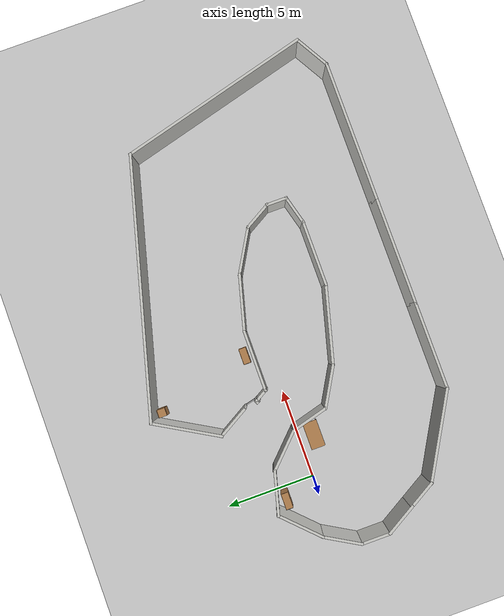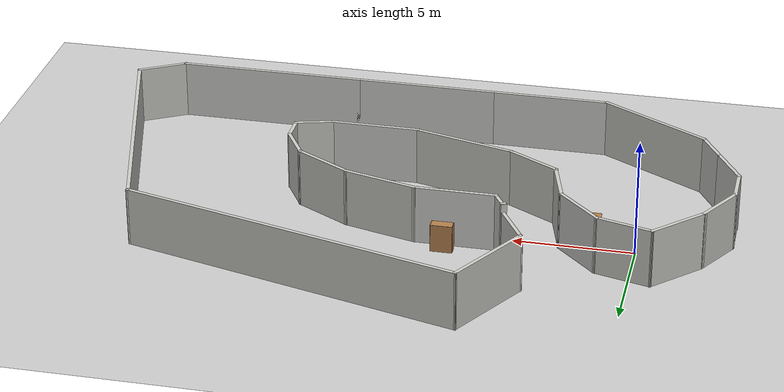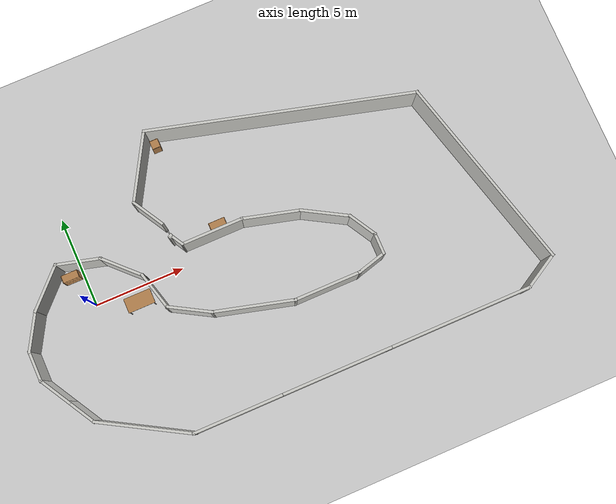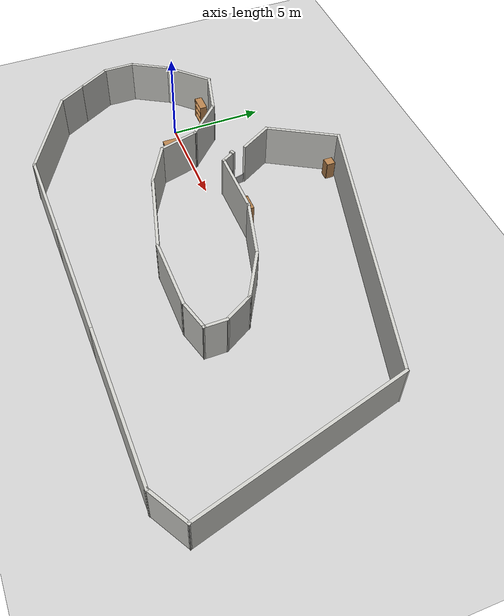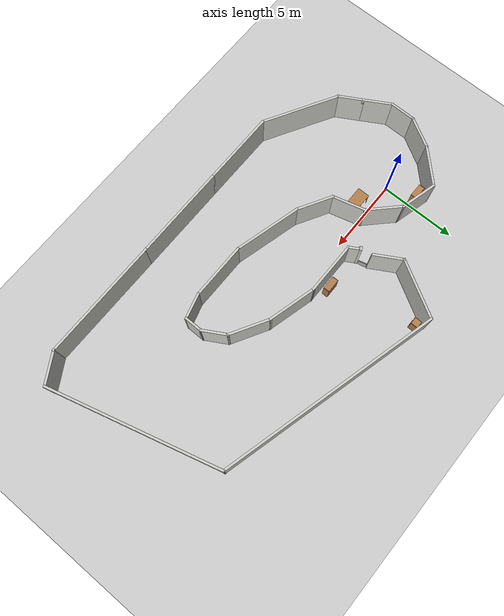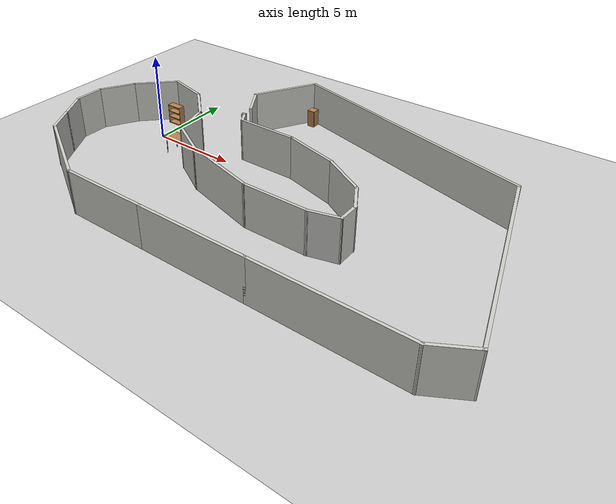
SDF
<sdf version="1.7">
 <world name="default">
  <light name="sun" type="directional">
   <pose>0 0 10 0 -0 0</pose>
   <diffuse>0.8 0.8 0.8 1</diffuse>
   <specular>0.2 0.2 0.2 1</specular>
   <attenuation>
    <range>1000</range>
    <constant>0.9</constant>
    <linear>0.01</linear>
    <quadratic>0.001</quadratic>
   </attenuation>
   <direction>-0.5 0.1 -0.9</direction>
   <spot><inner_angle>0</inner_angle><outer_angle>0</outer_angle><falloff>0</falloff></spot>
  </light>
  <model name="ground_plane">
   <static>1</static>
   <link name="link">
    <collision name="collision">
     <geometry><plane><normal>0 0 1</normal><size>100 100</size></plane></geometry>
     <surface>
      <contact><collide_bitmask>65535</collide_bitmask></contact>
      <friction><ode><mu>100</mu><mu2>50</mu2></ode></friction>
     </surface>
    </collision>
    <visual name="visual">
     <cast_shadows>0</cast_shadows>
     <geometry><plane><normal>0 0 1</normal><size>100 100</size></plane></geometry>
     <material>
      <script><uri>file://media/materials/scripts/gazebo.material</uri><name>Gazebo/Grey</name></script>
     </material>
    </visual>
   </link>
  </model>
  <physics type="ode">
   <real_time_update_rate>1000</real_time_update_rate>
   <max_step_size>0.001</max_step_size>
   <real_time_factor>1</real_time_factor>
   <ode>
    <solver>
     <type>quick</type>
     <iters>150</iters>
     <precon_iters>0</precon_iters>
     <sor>1.4</sor>
     <use_dynamic_moi_rescaling>1</use_dynamic_moi_rescaling>
    </solver>
    <constraints>
     <cfm>1e-05</cfm>
     <erp>0.2</erp>
     <contact_max_correcting_vel>2000</contact_max_correcting_vel>
     <contact_surface_layer>0.01</contact_surface_layer>
    </constraints>
   </ode>
  </physics>
  <scene><ambient>0.4 0.4 0.4 1</ambient><background>0.7 0.7 0.7 1</background><shadows>0</shadows></scene>
  <gravity>0 0 -9.8</gravity>
  <magnetic_field>6e-06 2.3e-05 -4.2e-05</magnetic_field>
  <atmosphere type="adiabatic"/>
  <spherical_coordinates>
   <surface_model>EARTH_WGS84</surface_model>
   <latitude_deg>0</latitude_deg>
   <longitude_deg>0</longitude_deg>
   <elevation>0</elevation>
   <heading_deg>0</heading_deg>
  </spherical_coordinates>
  <model name="c-shaped-room-2">
   <pose>9.60203 -0.59248 0 0 -0 0</pose>
   <link name="Wall_0">
    <collision name="Wall_0_Collision">
     <geometry><box><size>0.75 0.15 2.5</size></box></geometry>
     <pose>0 0 1.25 0 -0 0</pose>
    </collision>
    <visual name="Wall_0_Visual">
     <pose>0 0 1.25 0 -0 0</pose>
     <geometry><box><size>0.75 0.15 2.5</size></box></geometry>
     <material>
      <script><uri>file://media/materials/scripts/gazebo.material</uri><name>Gazebo/CeilingTiled</name></script>
      <ambient>1 1 1 1</ambient>
     </material>
     <meta><layer>0</layer></meta>
    </visual>
    <pose>-4.18018 1.68232 0 0 -0 -1.0472</pose>
   </link>
   <link name="Wall_1">
    <collision name="Wall_1_Collision">
     <geometry><box><size>3.5 0.15 2.5</size></box></geometry>
     <pose>0 0 1.25 0 -0 0</pose>
    </collision>
    <visual name="Wall_1_Visual">
     <pose>0 0 1.25 0 -0 0</pose>
     <geometry><box><size>3.5 0.15 2.5</size></box></geometry>
     <material>
      <script><uri>file://media/materials/scripts/gazebo.material</uri><name>Gazebo/CeilingTiled</name></script>
      <ambient>1 1 1 1</ambient>
     </material>
     <meta><layer>0</layer></meta>
    </visual>
    <pose>-2.35519 1.42251 0 0 -0 0</pose>
   </link>
   <link name="Wall_10">
    <collision name="Wall_10_Collision">
     <geometry><box><size>2.25 0.15 2.5</size></box></geometry>
     <pose>0 0 1.25 0 -0 0</pose>
    </collision>
    <visual name="Wall_10_Visual">
     <pose>0 0 1.25 0 -0 0</pose>
     <geometry><box><size>2.25 0.15 2.5</size></box></geometry>
     <material>
      <script><uri>file://media/materials/scripts/gazebo.material</uri><name>Gazebo/CeilingTiled</name></script>
      <ambient>1 1 1 1</ambient>
     </material>
     <meta><layer>0</layer></meta>
    </visual>
    <pose>-6.28833 -0.264497 0 0 -0 1.8326</pose>
   </link>
   <link name="Wall_11">
    <collision name="Wall_11_Collision">
     <geometry><box><size>2.5 0.15 2.5</size></box></geometry>
     <pose>0 0 1.25 0 -0 0</pose>
    </collision>
    <visual name="Wall_11_Visual">
     <pose>0 0 1.25 0 -0 0</pose>
     <geometry><box><size>2.5 0.15 2.5</size></box></geometry>
     <material>
      <script><uri>file://media/materials/scripts/gazebo.material</uri><name>Gazebo/CeilingTiled</name></script>
      <ambient>1 1 1 1</ambient>
     </material>
     <meta><layer>0</layer></meta>
    </visual>
    <pose>-7.39094 1.58058 0 0 -0 2.35619</pose>
   </link>
   <link name="Wall_12">
    <collision name="Wall_12_Collision">
     <geometry><box><size>2.5 0.15 2.5</size></box></geometry>
     <pose>0 0 1.25 0 -0 0</pose>
    </collision>
    <visual name="Wall_12_Visual">
     <pose>0 0 1.25 0 -0 0</pose>
     <geometry><box><size>2.5 0.15 2.5</size></box></geometry>
     <material>
      <script><uri>file://media/materials/scripts/gazebo.material</uri><name>Gazebo/CeilingTiled</name></script>
      <ambient>1 1 1 1</ambient>
     </material>
     <meta><layer>0</layer></meta>
    </visual>
    <pose>-9.35675 2.71554 0 0 -0 2.87979</pose>
   </link>
   <link name="Wall_13">
    <collision name="Wall_13_Collision">
     <geometry><box><size>2.75 0.15 2.5</size></box></geometry>
     <pose>0 0 1.25 0 -0 0</pose>
    </collision>
    <visual name="Wall_13_Visual">
     <pose>0 0 1.25 0 -0 0</pose>
     <geometry><box><size>2.75 0.15 2.5</size></box></geometry>
     <material>
      <script><uri>file://media/materials/scripts/gazebo.material</uri><name>Gazebo/CeilingTiled</name></script>
      <ambient>1 1 1 1</ambient>
     </material>
     <meta><layer>0</layer></meta>
    </visual>
    <pose>-11.411 2.10041 0 0 -0 -2.35619</pose>
   </link>
   <link name="Wall_14">
    <collision name="Wall_14_Collision">
     <geometry><box><size>2.25 0.15 2.5</size></box></geometry>
     <pose>0 0 1.25 0 -0 0</pose>
    </collision>
    <visual name="Wall_14_Visual">
     <pose>0 0 1.25 0 -0 0</pose>
     <geometry><box><size>2.25 0.15 2.5</size></box></geometry>
     <material>
      <script><uri>file://media/materials/scripts/gazebo.material</uri><name>Gazebo/CeilingTiled</name></script>
      <ambient>1 1 1 1</ambient>
     </material>
     <meta><layer>0</layer></meta>
    </visual>
    <pose>-12.8552 0.271847 0 0 -0 -2.0944</pose>
   </link>
   <link name="Wall_15">
    <collision name="Wall_15_Collision">
     <geometry><box><size>1.75 0.15 2.5</size></box></geometry>
     <pose>0 0 1.25 0 -0 0</pose>
    </collision>
    <visual name="Wall_15_Visual">
     <pose>0 0 1.25 0 -0 0</pose>
     <geometry><box><size>1.75 0.15 2.5</size></box></geometry>
     <material>
      <script><uri>file://media/materials/scripts/gazebo.material</uri><name>Gazebo/CeilingTiled</name></script>
      <ambient>1 1 1 1</ambient>
     </material>
     <meta><layer>0</layer></meta>
    </visual>
    <pose>-13.3802 -1.43748 0 0 -0 -1.5708</pose>
   </link>
   <link name="Wall_16">
    <collision name="Wall_16_Collision">
     <geometry><box><size>2 0.15 2.5</size></box></geometry>
     <pose>0 0 1.25 0 -0 0</pose>
    </collision>
    <visual name="Wall_16_Visual">
     <pose>0 0 1.25 0 -0 0</pose>
     <geometry><box><size>2 0.15 2.5</size></box></geometry>
     <material>
      <script><uri>file://media/materials/scripts/gazebo.material</uri><name>Gazebo/CeilingTiled</name></script>
      <ambient>1 1 1 1</ambient>
     </material>
     <meta><layer>0</layer></meta>
    </visual>
    <pose>-12.9177 -3.03855 0 0 -0 -1.0472</pose>
   </link>
   <link name="Wall_17">
    <collision name="Wall_17_Collision">
     <geometry><box><size>1.75 0.15 2.5</size></box></geometry>
     <pose>0 0 1.25 0 -0 0</pose>
    </collision>
    <visual name="Wall_17_Visual">
     <pose>0 0 1.25 0 -0 0</pose>
     <geometry><box><size>1.75 0.15 2.5</size></box></geometry>
     <material>
      <script><uri>file://media/materials/scripts/gazebo.material</uri><name>Gazebo/CeilingTiled</name></script>
      <ambient>1 1 1 1</ambient>
     </material>
     <meta><layer>0</layer></meta>
    </visual>
    <pose>-12.0552 -4.53245 0 0 -0 -1.0472</pose>
   </link>
   <link name="Wall_18">
    <collision name="Wall_18_Collision">
     <geometry><box><size>5.25 0.15 2.5</size></box></geometry>
     <pose>0 0 1.25 0 -0 0</pose>
    </collision>
    <visual name="Wall_18_Visual">
     <pose>0 0 1.25 0 -0 0</pose>
     <geometry><box><size>5.25 0.15 2.5</size></box></geometry>
     <material>
      <script><uri>file://media/materials/scripts/gazebo.material</uri><name>Gazebo/CeilingTiled</name></script>
      <ambient>1 1 1 1</ambient>
     </material>
     <meta><layer>0</layer></meta>
    </visual>
    <pose>-9.44683 -6.50027 0 0 -0 -0.523599</pose>
   </link>
   <link name="Wall_19">
    <collision name="Wall_19_Collision">
     <geometry><box><size>5 0.15 2.5</size></box></geometry>
     <pose>0 0 1.25 0 -0 0</pose>
    </collision>
    <visual name="Wall_19_Visual">
     <pose>0 0 1.25 0 -0 0</pose>
     <geometry><box><size>5 0.15 2.5</size></box></geometry>
     <material>
      <script><uri>file://media/materials/scripts/gazebo.material</uri><name>Gazebo/CeilingTiled</name></script>
      <ambient>1 1 1 1</ambient>
     </material>
     <meta><layer>0</layer></meta>
    </visual>
    <pose>-4.81346 -7.77527 0 0 -0 0</pose>
   </link>
   <link name="Wall_2">
    <collision name="Wall_2_Collision">
     <geometry><box><size>3.25 0.15 2.5</size></box></geometry>
     <pose>0 0 1.25 0 -0 0</pose>
    </collision>
    <visual name="Wall_2_Visual">
     <pose>0 0 1.25 0 -0 0</pose>
     <geometry><box><size>3.25 0.15 2.5</size></box></geometry>
     <material>
      <script><uri>file://media/materials/scripts/gazebo.material</uri><name>Gazebo/CeilingTiled</name></script>
      <ambient>1 1 1 1</ambient>
     </material>
     <meta><layer>0</layer></meta>
    </visual>
    <pose>0.817 1.02134 0 0 -0 -0.261799</pose>
   </link>
   <link name="Wall_20">
    <collision name="Wall_20_Collision">
     <geometry><box><size>6.25 0.15 2.5</size></box></geometry>
     <pose>0 0 1.25 0 -0 0</pose>
    </collision>
    <visual name="Wall_20_Visual">
     <pose>0 0 1.25 0 -0 0</pose>
     <geometry><box><size>6.25 0.15 2.5</size></box></geometry>
     <material>
      <script><uri>file://media/materials/scripts/gazebo.material</uri><name>Gazebo/CeilingTiled</name></script>
      <ambient>1 1 1 1</ambient>
     </material>
     <meta><layer>0</layer></meta>
    </visual>
    <pose>0.661538 -7.77527 0 0 -0 0</pose>
   </link>
   <link name="Wall_21">
    <collision name="Wall_21_Collision">
     <geometry><box><size>8 0.15 2.5</size></box></geometry>
     <pose>0 0 1.25 0 -0 0</pose>
    </collision>
    <visual name="Wall_21_Visual">
     <pose>0 0 1.25 0 -0 0</pose>
     <geometry><box><size>8 0.15 2.5</size></box></geometry>
     <material>
      <script><uri>file://media/materials/scripts/gazebo.material</uri><name>Gazebo/CeilingTiled</name></script>
      <ambient>1 1 1 1</ambient>
     </material>
     <meta><layer>0</layer></meta>
    </visual>
    <pose>7.63654 -7.77527 0 0 -0 0</pose>
   </link>
   <link name="Wall_22">
    <collision name="Wall_22_Collision">
     <geometry><box><size>2.25 0.15 2.5</size></box></geometry>
     <pose>0 0 1.25 0 -0 0</pose>
    </collision>
    <visual name="Wall_22_Visual">
     <pose>0 0 1.25 0 -0 0</pose>
     <geometry><box><size>2.25 0.15 2.5</size></box></geometry>
     <material>
      <script><uri>file://media/materials/scripts/gazebo.material</uri><name>Gazebo/CeilingTiled</name></script>
      <ambient>1 1 1 1</ambient>
     </material>
     <meta><layer>0</layer></meta>
    </visual>
    <pose>12.4709 -7.25027 0 0 -0 0.523599</pose>
   </link>
   <link name="Wall_23">
    <collision name="Wall_23_Collision">
     <geometry><box><size>11.25 0.15 2.5</size></box></geometry>
     <pose>0 0 1.25 0 -0 0</pose>
    </collision>
    <visual name="Wall_23_Visual">
     <pose>0 0 1.25 0 -0 0</pose>
     <geometry><box><size>11.25 0.15 2.5</size></box></geometry>
     <material>
      <script><uri>file://media/materials/scripts/gazebo.material</uri><name>Gazebo/CeilingTiled</name></script>
      <ambient>1 1 1 1</ambient>
     </material>
     <meta><layer>0</layer></meta>
    </visual>
    <pose>11.9437 -1.36438 0 0 -0 1.8326</pose>
   </link>
   <link name="Wall_24">
    <collision name="Wall_24_Collision">
     <geometry><box><size>14.75 0.15 2.5</size></box></geometry>
     <pose>0 0 1.25 0 -0 0</pose>
    </collision>
    <visual name="Wall_24_Visual">
     <pose>0 0 1.25 0 -0 0</pose>
     <geometry><box><size>14.75 0.15 2.5</size></box></geometry>
     <material>
      <script><uri>file://media/materials/scripts/gazebo.material</uri><name>Gazebo/CeilingTiled</name></script>
      <ambient>1 1 1 1</ambient>
     </material>
     <meta><layer>0</layer></meta>
    </visual>
    <pose>3.45604 5.88589 0 0 -0 2.87979</pose>
   </link>
   <link name="Wall_25">
    <collision name="Wall_25_Collision">
     <geometry><box><size>4 0.15 2.5</size></box></geometry>
     <pose>0 0 1.25 0 -0 0</pose>
    </collision>
    <visual name="Wall_25_Visual">
     <pose>0 0 1.25 0 -0 0</pose>
     <geometry><box><size>4 0.15 2.5</size></box></geometry>
     <material>
      <script><uri>file://media/materials/scripts/gazebo.material</uri><name>Gazebo/CeilingTiled</name></script>
      <ambient>1 1 1 1</ambient>
     </material>
     <meta><layer>0</layer></meta>
    </visual>
    <pose>-4.55772 6.10817 0 0 -0 -2.0944</pose>
   </link>
   <link name="Wall_26">
    <collision name="Wall_26_Collision">
     <geometry><box><size>2 0.15 2.5</size></box></geometry>
     <pose>0 0 1.25 0 -0 0</pose>
    </collision>
    <visual name="Wall_26_Visual">
     <pose>0 0 1.25 0 -0 0</pose>
     <geometry><box><size>2 0.15 2.5</size></box></geometry>
     <material>
      <script><uri>file://media/materials/scripts/gazebo.material</uri><name>Gazebo/CeilingTiled</name></script>
      <ambient>1 1 1 1</ambient>
     </material>
     <meta><layer>0</layer></meta>
    </visual>
    <pose>-5.05772 3.64 0 0 -0 -1.0472</pose>
   </link>
   <link name="Wall_3">
    <collision name="Wall_3_Collision">
     <geometry><box><size>2.75 0.15 2.5</size></box></geometry>
     <pose>0 0 1.25 0 -0 0</pose>
    </collision>
    <visual name="Wall_3_Visual">
     <pose>0 0 1.25 0 -0 0</pose>
     <geometry><box><size>2.75 0.15 2.5</size></box></geometry>
     <material>
      <script><uri>file://media/materials/scripts/gazebo.material</uri><name>Gazebo/CeilingTiled</name></script>
      <ambient>1 1 1 1</ambient>
     </material>
     <meta><layer>0</layer></meta>
    </visual>
    <pose>3.44002 -0.029831 0 0 -0 -0.523599</pose>
   </link>
   <link name="Wall_4">
    <collision name="Wall_4_Collision">
     <geometry><box><size>1.75 0.15 2.5</size></box></geometry>
     <pose>0 0 1.25 0 -0 0</pose>
    </collision>
    <visual name="Wall_4_Visual">
     <pose>0 0 1.25 0 -0 0</pose>
     <geometry><box><size>1.75 0.15 2.5</size></box></geometry>
     <material>
      <script><uri>file://media/materials/scripts/gazebo.material</uri><name>Gazebo/CeilingTiled</name></script>
      <ambient>1 1 1 1</ambient>
     </material>
     <meta><layer>0</layer></meta>
    </visual>
    <pose>4.96585 -1.37265 0 0 -0 -1.0472</pose>
   </link>
   <link name="Wall_5">
    <collision name="Wall_5_Collision">
     <geometry><box><size>1.25 0.15 2.5</size></box></geometry>
     <pose>0 0 1.25 0 -0 0</pose>
    </collision>
    <visual name="Wall_5_Visual">
     <pose>0 0 1.25 0 -0 0</pose>
     <geometry><box><size>1.25 0.15 2.5</size></box></geometry>
     <material>
      <script><uri>file://media/materials/scripts/gazebo.material</uri><name>Gazebo/CeilingTiled</name></script>
      <ambient>1 1 1 1</ambient>
     </material>
     <meta><layer>0</layer></meta>
    </visual>
    <pose>5.36585 -2.61547 0 0 -0 -1.5708</pose>
   </link>
   <link name="Wall_6">
    <collision name="Wall_6_Collision">
     <geometry><box><size>1.75 0.15 2.5</size></box></geometry>
     <pose>0 0 1.25 0 -0 0</pose>
    </collision>
    <visual name="Wall_6_Visual">
     <pose>0 0 1.25 0 -0 0</pose>
     <geometry><box><size>1.75 0.15 2.5</size></box></geometry>
     <material>
      <script><uri>file://media/materials/scripts/gazebo.material</uri><name>Gazebo/CeilingTiled</name></script>
      <ambient>1 1 1 1</ambient>
     </material>
     <meta><layer>0</layer></meta>
    </visual>
    <pose>4.59311 -3.37253 0 0 -0 -2.87979</pose>
   </link>
   <link name="Wall_7">
    <collision name="Wall_7_Collision">
     <geometry><box><size>3.75 0.15 2.5</size></box></geometry>
     <pose>0 0 1.25 0 -0 0</pose>
    </collision>
    <visual name="Wall_7_Visual">
     <pose>0 0 1.25 0 -0 0</pose>
     <geometry><box><size>3.75 0.15 2.5</size></box></geometry>
     <material>
      <script><uri>file://media/materials/scripts/gazebo.material</uri><name>Gazebo/CeilingTiled</name></script>
      <ambient>1 1 1 1</ambient>
     </material>
     <meta><layer>0</layer></meta>
    </visual>
    <pose>2.02037 -3.57958 0 0 -0 3.14159</pose>
   </link>
   <link name="Wall_8">
    <collision name="Wall_8_Collision">
     <geometry><box><size>4.5 0.15 2.5</size></box></geometry>
     <pose>0 0 1.25 0 -0 0</pose>
    </collision>
    <visual name="Wall_8_Visual">
     <pose>0 0 1.25 0 -0 0</pose>
     <geometry><box><size>4.5 0.15 2.5</size></box></geometry>
     <material>
      <script><uri>file://media/materials/scripts/gazebo.material</uri><name>Gazebo/CeilingTiled</name></script>
      <ambient>1 1 1 1</ambient>
     </material>
     <meta><layer>0</layer></meta>
    </visual>
    <pose>-1.88052 -3.01665 0 0 -0 2.87979</pose>
   </link>
   <link name="Wall_9">
    <collision name="Wall_9_Collision">
     <geometry><box><size>2.5 0.15 2.5</size></box></geometry>
     <pose>0 0 1.25 0 -0 0</pose>
    </collision>
    <visual name="Wall_9_Visual">
     <pose>0 0 1.25 0 -0 0</pose>
     <geometry><box><size>2.5 0.15 2.5</size></box></geometry>
     <material>
      <script><uri>file://media/materials/scripts/gazebo.material</uri><name>Gazebo/CeilingTiled</name></script>
      <ambient>1 1 1 1</ambient>
     </material>
     <meta><layer>0</layer></meta>
    </visual>
    <pose>-4.99899 -1.86622 0 0 -0 2.61799</pose>
   </link>
   <static>1</static>
  </model>
  <model name="table">
   <static>1</static>
   <link name="link">
    <collision name="surface">
     <pose>0 0 1 0 -0 0</pose>
     <geometry><box><size>1.5 0.8 0.03</size></box></geometry>
     <surface><friction><ode><mu>0.6</mu><mu2>0.6</mu2></ode></friction></surface>
    </collision>
    <visual name="visual1">
     <pose>0 0 1 0 -0 0</pose>
     <geometry><box><size>1.5 0.8 0.03</size></box></geometry>
     <material>
      <script><uri>file://media/materials/scripts/gazebo.material</uri><name>Gazebo/Wood</name></script>
     </material>
    </visual>
    <collision name="front_left_leg">
     <pose>0.68 0.38 0.5 0 -0 0</pose>
     <geometry><cylinder><radius>0.02</radius><length>1</length></cylinder></geometry>
    </collision>
    <visual name="front_left_leg">
     <pose>0.68 0.38 0.5 0 -0 0</pose>
     <geometry><cylinder><radius>0.02</radius><length>1</length></cylinder></geometry>
     <material>
      <script><uri>file://media/materials/scripts/gazebo.material</uri><name>Gazebo/Grey</name></script>
     </material>
    </visual>
    <collision name="front_right_leg">
     <pose>0.68 -0.38 0.5 0 -0 0</pose>
     <geometry><cylinder><radius>0.02</radius><length>1</length></cylinder></geometry>
    </collision>
    <visual name="front_right_leg">
     <pose>0.68 -0.38 0.5 0 -0 0</pose>
     <geometry><cylinder><radius>0.02</radius><length>1</length></cylinder></geometry>
     <material>
      <script><uri>file://media/materials/scripts/gazebo.material</uri><name>Gazebo/Grey</name></script>
     </material>
    </visual>
    <collision name="back_right_leg">
     <pose>-0.68 -0.38 0.5 0 -0 0</pose>
     <geometry><cylinder><radius>0.02</radius><length>1</length></cylinder></geometry>
    </collision>
    <visual name="back_right_leg">
     <pose>-0.68 -0.38 0.5 0 -0 0</pose>
     <geometry><cylinder><radius>0.02</radius><length>1</length></cylinder></geometry>
     <material>
      <script><uri>file://media/materials/scripts/gazebo.material</uri><name>Gazebo/Grey</name></script>
     </material>
    </visual>
    <collision name="back_left_leg">
     <pose>-0.68 0.38 0.5 0 -0 0</pose>
     <geometry><cylinder><radius>0.02</radius><length>1</length></cylinder></geometry>
    </collision>
    <visual name="back_left_leg">
     <pose>-0.68 0.38 0.5 0 -0 0</pose>
     <geometry><cylinder><radius>0.02</radius><length>1</length></cylinder></geometry>
     <material>
      <script><uri>file://media/materials/scripts/gazebo.material</uri><name>Gazebo/Grey</name></script>
     </material>
    </visual>
   </link>
   <pose>2.2775 -0.823544 0 0 -0 0</pose>
  </model>
  <model name="bookshelf">
   <static>1</static>
   <link name="link">
    <inertial><mass>1</mass></inertial>
    <collision name="back">
     <pose>0 0.005 0.6 0 -0 0</pose>
     <geometry><box><size>0.9 0.01 1.2</size></box></geometry>
    </collision>
    <visual name="visual1">
     <pose>0 0.005 0.6 0 -0 0</pose>
     <geometry><box><size>0.9 0.01 1.2</size></box></geometry>
     <material>
      <script><uri>file://media/materials/scripts/gazebo.material</uri><name>Gazebo/Wood</name></script>
     </material>
    </visual>
    <collision name="left_side">
     <pose>0.45 -0.195 0.6 0 -0 0</pose>
     <geometry><box><size>0.02 0.4 1.2</size></box></geometry>
    </collision>
    <visual name="visual2">
     <pose>0.45 -0.195 0.6 0 -0 0</pose>
     <geometry><box><size>0.02 0.4 1.2</size></box></geometry>
     <material>
      <script><uri>file://media/materials/scripts/gazebo.material</uri><name>Gazebo/Wood</name></script>
     </material>
    </visual>
    <collision name="right_side">
     <pose>-0.45 -0.195 0.6 0 -0 0</pose>
     <geometry><box><size>0.02 0.4 1.2</size></box></geometry>
    </collision>
    <visual name="visual3">
     <pose>-0.45 -0.195 0.6 0 -0 0</pose>
     <geometry><box><size>0.02 0.4 1.2</size></box></geometry>
     <material>
      <script><uri>file://media/materials/scripts/gazebo.material</uri><name>Gazebo/Wood</name></script>
     </material>
    </visual>
    <collision name="bottom">
     <pose>0 -0.195 0.03 0 -0 0</pose>
     <geometry><box><size>0.88 0.4 0.06</size></box></geometry>
    </collision>
    <visual name="visual4">
     <pose>0 -0.195 0.03 0 -0 0</pose>
     <geometry><box><size>0.88 0.4 0.06</size></box></geometry>
     <material>
      <script><uri>file://media/materials/scripts/gazebo.material</uri><name>Gazebo/Wood</name></script>
     </material>
    </visual>
    <collision name="top">
     <pose>0 -0.195 1.19 0 -0 0</pose>
     <geometry><box><size>0.88 0.4 0.02</size></box></geometry>
    </collision>
    <visual name="visual5">
     <pose>0 -0.195 1.19 0 -0 0</pose>
     <geometry><box><size>0.88 0.4 0.02</size></box></geometry>
     <material>
      <script><uri>file://media/materials/scripts/gazebo.material</uri><name>Gazebo/Wood</name></script>
     </material>
    </visual>
    <collision name="low_shelf">
     <pose>0 -0.195 0.43 0 -0 0</pose>
     <geometry><box><size>0.88 0.4 0.02</size></box></geometry>
    </collision>
    <visual name="visual6">
     <pose>0 -0.195 0.43 0 -0 0</pose>
     <geometry><box><size>0.88 0.4 0.02</size></box></geometry>
     <material>
      <script><uri>file://media/materials/scripts/gazebo.material</uri><name>Gazebo/Wood</name></script>
     </material>
    </visual>
    <collision name="high_shelf">
     <pose>0 -0.195 0.8 0 -0 0</pose>
     <geometry><box><size>0.88 0.4 0.02</size></box></geometry>
    </collision>
    <visual name="visual7">
     <pose>0 -0.195 0.8 0 -0 0</pose>
     <geometry><box><size>0.88 0.4 0.02</size></box></geometry>
     <material>
      <script><uri>file://media/materials/scripts/gazebo.material</uri><name>Gazebo/Wood</name></script>
     </material>
    </visual>
   </link>
   <pose>-0.580839 1.99278 0 0 -0 0</pose>
  </model>
  <model name="door-model">
   <link name="door">
    <inertial>
     <mass>20</mass>
     <inertia>
      <ixx>4.53808</ixx>
      <ixy>0</ixy>
      <ixz>0</ixz>
      <iyy>4.54003</iyy>
      <iyz>0</iyz>
      <izz>0.0512722</izz>
     </inertia>
    </inertial>
    <gravity>0</gravity>
    <visual name="visual">
     <geometry><mesh><uri>model://door-model/./Door.dae</uri><scale>0.001 0.001 0.001</scale></mesh></geometry>
    </visual>
    <collision name="collision">
     <geometry><mesh><uri>model://door-model/./Door.dae</uri><scale>0.001 0.001 0.001</scale></mesh></geometry>
     <surface>
      <friction>
       <ode><mu>1</mu><mu2>1</mu2><fdir1>0 0 0</fdir1><slip1>0</slip1><slip2>0</slip2></ode>
       <torsional>
        <coefficient>1</coefficient>
        <patch_radius>0</patch_radius>
        <surface_radius>0</surface_radius>
        <use_patch_radius>1</use_patch_radius>
        <ode><slip>0</slip></ode>
       </torsional>
      </friction>
      <bounce><restitution_coefficient>0</restitution_coefficient><threshold>1e+06</threshold></bounce>
      <contact>
       <collide_without_contact>0</collide_without_contact>
       <collide_without_contact_bitmask>1</collide_without_contact_bitmask>
       <collide_bitmask>1</collide_bitmask>
       <ode>
        <soft_cfm>0</soft_cfm>
        <soft_erp>0.2</soft_erp>
        <kp>1e+13</kp>
        <kd>1</kd>
        <max_vel>0.01</max_vel>
        <min_depth>0</min_depth>
       </ode>
       <bullet>
        <split_impulse>1</split_impulse>
        <split_impulse_penetration_threshold>-0.01</split_impulse_penetration_threshold>
        <soft_cfm>0</soft_cfm>
        <soft_erp>0.2</soft_erp>
        <kp>1e+13</kp>
        <kd>1</kd>
       </bullet>
      </contact>
     </surface>
    </collision>
   </link>
   <link name="pole">
    <inertial>
     <mass>100</mass>
     <inertia>
      <ixx>0.001</ixx>
      <ixy>0.001</ixy>
      <ixz>0.001</ixz>
      <iyy>0.001</iyy>
      <iyz>0.001</iyz>
      <izz>0.001</izz>
     </inertia>
    </inertial>
    <pose>-0.02632 0 0.308096 0 -0 0</pose>
    <gravity>0</gravity>
    <kinematic>1</kinematic>
    <visual name="visual">
     <geometry><box><size>0.048276 0.0462 0.625074</size></box></geometry>
     <material>
      <lighting>1</lighting>
      <script><uri>file://media/materials/scripts/gazebo.material</uri><name>Gazebo/White</name></script>
      <ambient>1 1 1 1</ambient>
     </material>
    </visual>
    <collision name="collision">
     <geometry><box><size>0.048 0.046201 0.625074</size></box></geometry>
     <surface>
      <friction>
       <ode><mu>1</mu><mu2>1</mu2><fdir1>0 0 0</fdir1><slip1>0</slip1><slip2>0</slip2></ode>
       <torsional>
        <coefficient>1</coefficient>
        <patch_radius>0</patch_radius>
        <surface_radius>0</surface_radius>
        <use_patch_radius>1</use_patch_radius>
        <ode><slip>0</slip></ode>
       </torsional>
      </friction>
      <bounce><restitution_coefficient>0</restitution_coefficient><threshold>1e+06</threshold></bounce>
      <contact>
       <collide_without_contact>0</collide_without_contact>
       <collide_without_contact_bitmask>1</collide_without_contact_bitmask>
       <collide_bitmask>1</collide_bitmask>
       <ode>
        <soft_cfm>0</soft_cfm>
        <soft_erp>0.2</soft_erp>
        <kp>1e+13</kp>
        <kd>1</kd>
        <max_vel>0.01</max_vel>
        <min_depth>0</min_depth>
       </ode>
       <bullet>
        <split_impulse>1</split_impulse>
        <split_impulse_penetration_threshold>-0.01</split_impulse_penetration_threshold>
        <soft_cfm>0</soft_cfm>
        <soft_erp>0.2</soft_erp>
        <kp>1e+13</kp>
        <kd>1</kd>
       </bullet>
      </contact>
     </surface>
    </collision>
   </link>
   <joint name="hinge" type="revolute">
    <parent>pole</parent>
    <child>door</child>
    <pose>0 0 0.3 0 -0 0</pose>
    <axis>
     <xyz>0 0 1</xyz>
     <limit><lower>-1.74533</lower><upper>1.74533</upper><effort>3900</effort><velocity>0.62</velocity></limit>
     <dynamics>
      <spring_reference>0</spring_reference>
      <spring_stiffness>0</spring_stiffness>
      <damping>0.1</damping>
      <friction>0.1</friction>
     </dynamics>
    </axis>
    <physics>
     <ode><limit><cfm>0</cfm><erp>0.2</erp></limit><suspension><cfm>0</cfm><erp>0.2</erp></suspension></ode>
    </physics>
   </joint>
   <static>0</static>
   <pose>5.06477 2.12591 0 0 0 -1.34068</pose>
  </model>
  <model name="gap-filler-tile">
   <pose>5.07767 4.81142 0 0 -0 0.450926</pose>
   <link name="Wall_4">
    <collision name="Wall_4_Collision">
     <geometry><box><size>0.25 0.15 2.5</size></box></geometry>
     <pose>0 0 1.25 0 -0 0</pose>
    </collision>
    <visual name="Wall_4_Visual">
     <pose>0 0 1.25 0 -0 0</pose>
     <geometry><box><size>0.25 0.15 2.5</size></box></geometry>
     <material>
      <script><uri>file://media/materials/scripts/gazebo.material</uri><name>Gazebo/CeilingTiled</name></script>
      <ambient>1 1 1 1</ambient>
     </material>
     <meta><layer>0</layer></meta>
    </visual>
    <pose>-1.38938 -3.0906 0 0 -0 3.14159</pose>
   </link>
   <static>1</static>
  </model>
  <model name="gap-filler-tile_clone">
   <pose>5.05904 4.85693 0 0 -0 0.450926</pose>
   <link name="Wall_4">
    <collision name="Wall_4_Collision">
     <geometry><box><size>0.25 0.15 2.5</size></box></geometry>
     <pose>0 0 1.25 0 -0 0</pose>
    </collision>
    <visual name="Wall_4_Visual">
     <pose>0 0 1.25 0 -0 0</pose>
     <geometry><box><size>0.25 0.15 2.5</size></box></geometry>
     <material>
      <script><uri>file://media/materials/scripts/gazebo.material</uri><name>Gazebo/CeilingTiled</name></script>
      <ambient>1 1 1 1</ambient>
     </material>
     <meta><layer>0</layer></meta>
    </visual>
    <pose>-1.38938 -3.0906 0 0 -0 3.14159</pose>
   </link>
   <static>1</static>
  </model>
  <model name="cabinet">
   <static>1</static>
   <link name="cabinet_bottom_plate">
    <inertial>
     <pose>0 0 -1 0 -0 0</pose>
     <inertia><ixx>2.05</ixx><ixy>0</ixy><ixz>0</ixz><iyy>2.05</iyy><iyz>0</iyz><izz>2.05</izz></inertia>
     <mass>25</mass>
    </inertial>
    <collision name="cabinet_bottom_plate_geom">
     <pose>0 0 0.01 0 -0 0</pose>
     <geometry><box><size>0.45 0.45 0.02</size></box></geometry>
    </collision>
    <visual name="cabinet_bottom_plate_geom_visual">
     <pose>0 0 0.01 0 -0 0</pose>
     <geometry><box><size>0.45 0.45 0.02</size></box></geometry>
     <material>
      <script><uri>file://media/materials/scripts/gazebo.material</uri><name>Gazebo/Wood</name></script>
     </material>
    </visual>
    <collision name="cabinet_bottom_plate_geom_cabinet_back_plate">
     <pose>0.235 0 0.51 0 -0 0</pose>
     <geometry><box><size>0.02 0.45 1.02</size></box></geometry>
    </collision>
    <visual name="cabinet_bottom_plate_geom_cabinet_back_plate_visual">
     <pose>0.235 0 0.51 0 -0 0</pose>
     <geometry><box><size>0.02 0.45 1.02</size></box></geometry>
     <material>
      <script><uri>file://media/materials/scripts/gazebo.material</uri><name>Gazebo/Wood</name></script>
     </material>
    </visual>
    <collision name="cabinet_bottom_plate_geom_cabinet_left_plate">
     <pose>0 0.235 0.51 0 -0 0</pose>
     <geometry><box><size>0.45 0.02 1.02</size></box></geometry>
    </collision>
    <visual name="cabinet_bottom_plate_geom_cabinet_left_plate_visual">
     <pose>0 0.235 0.51 0 -0 0</pose>
     <geometry><box><size>0.45 0.02 1.02</size></box></geometry>
     <material>
      <script><uri>file://media/materials/scripts/gazebo.material</uri><name>Gazebo/Wood</name></script>
     </material>
    </visual>
    <collision name="cabinet_bottom_plate_geom_cabinet_middle_plate">
     <pose>0 0 0.51 0 -0 0</pose>
     <geometry><box><size>0.45 0.45 0.02</size></box></geometry>
    </collision>
    <visual name="cabinet_bottom_plate_geom_cabinet_middle_plate_visual">
     <pose>0 0 0.51 0 -0 0</pose>
     <geometry><box><size>0.45 0.45 0.02</size></box></geometry>
     <material>
      <script><uri>file://media/materials/scripts/gazebo.material</uri><name>Gazebo/Wood</name></script>
     </material>
    </visual>
    <collision name="cabinet_bottom_plate_geom_cabinet_right_plate">
     <pose>0 -0.235 0.51 0 -0 0</pose>
     <geometry><box><size>0.45 0.02 1.02</size></box></geometry>
    </collision>
    <visual name="cabinet_bottom_plate_geom_cabinet_right_plate_visual">
     <pose>0 -0.235 0.51 0 -0 0</pose>
     <geometry><box><size>0.45 0.02 1.02</size></box></geometry>
     <material>
      <script><uri>file://media/materials/scripts/gazebo.material</uri><name>Gazebo/Wood</name></script>
     </material>
    </visual>
    <collision name="cabinet_bottom_plate_geom_cabinet_top_plate">
     <pose>0 0 1.01 0 -0 0</pose>
     <geometry><box><size>0.45 0.45 0.02</size></box></geometry>
    </collision>
    <visual name="cabinet_bottom_plate_geom_cabinet_top_plate_visual">
     <pose>0 0 1.01 0 -0 0</pose>
     <geometry><box><size>0.45 0.45 0.02</size></box></geometry>
     <material>
      <script><uri>file://media/materials/scripts/gazebo.material</uri><name>Gazebo/Wood</name></script>
     </material>
    </visual>
   </link>
   <pose>6.26383 6.68639 0 0 -0 0</pose>
  </model>
  <model name="bookshelf_0">
   <static>1</static>
   <link name="link">
    <inertial><mass>1</mass></inertial>
    <collision name="back">
     <pose>0 0.005 0.6 0 -0 0</pose>
     <geometry><box><size>0.9 0.01 1.2</size></box></geometry>
    </collision>
    <visual name="visual1">
     <pose>0 0.005 0.6 0 -0 0</pose>
     <geometry><box><size>0.9 0.01 1.2</size></box></geometry>
     <material>
      <script><uri>file://media/materials/scripts/gazebo.material</uri><name>Gazebo/Wood</name></script>
     </material>
    </visual>
    <collision name="left_side">
     <pose>0.45 -0.195 0.6 0 -0 0</pose>
     <geometry><box><size>0.02 0.4 1.2</size></box></geometry>
    </collision>
    <visual name="visual2">
     <pose>0.45 -0.195 0.6 0 -0 0</pose>
     <geometry><box><size>0.02 0.4 1.2</size></box></geometry>
     <material>
      <script><uri>file://media/materials/scripts/gazebo.material</uri><name>Gazebo/Wood</name></script>
     </material>
    </visual>
    <collision name="right_side">
     <pose>-0.45 -0.195 0.6 0 -0 0</pose>
     <geometry><box><size>0.02 0.4 1.2</size></box></geometry>
    </collision>
    <visual name="visual3">
     <pose>-0.45 -0.195 0.6 0 -0 0</pose>
     <geometry><box><size>0.02 0.4 1.2</size></box></geometry>
     <material>
      <script><uri>file://media/materials/scripts/gazebo.material</uri><name>Gazebo/Wood</name></script>
     </material>
    </visual>
    <collision name="bottom">
     <pose>0 -0.195 0.03 0 -0 0</pose>
     <geometry><box><size>0.88 0.4 0.06</size></box></geometry>
    </collision>
    <visual name="visual4">
     <pose>0 -0.195 0.03 0 -0 0</pose>
     <geometry><box><size>0.88 0.4 0.06</size></box></geometry>
     <material>
      <script><uri>file://media/materials/scripts/gazebo.material</uri><name>Gazebo/Wood</name></script>
     </material>
    </visual>
    <collision name="top">
     <pose>0 -0.195 1.19 0 -0 0</pose>
     <geometry><box><size>0.88 0.4 0.02</size></box></geometry>
    </collision>
    <visual name="visual5">
     <pose>0 -0.195 1.19 0 -0 0</pose>
     <geometry><box><size>0.88 0.4 0.02</size></box></geometry>
     <material>
      <script><uri>file://media/materials/scripts/gazebo.material</uri><name>Gazebo/Wood</name></script>
     </material>
    </visual>
    <collision name="low_shelf">
     <pose>0 -0.195 0.43 0 -0 0</pose>
     <geometry><box><size>0.88 0.4 0.02</size></box></geometry>
    </collision>
    <visual name="visual6">
     <pose>0 -0.195 0.43 0 -0 0</pose>
     <geometry><box><size>0.88 0.4 0.02</size></box></geometry>
     <material>
      <script><uri>file://media/materials/scripts/gazebo.material</uri><name>Gazebo/Wood</name></script>
     </material>
    </visual>
    <collision name="high_shelf">
     <pose>0 -0.195 0.8 0 -0 0</pose>
     <geometry><box><size>0.88 0.4 0.02</size></box></geometry>
    </collision>
    <visual name="visual7">
     <pose>0 -0.195 0.8 0 -0 0</pose>
     <geometry><box><size>0.88 0.4 0.02</size></box></geometry>
     <material>
      <script><uri>file://media/materials/scripts/gazebo.material</uri><name>Gazebo/Wood</name></script>
     </material>
    </visual>
   </link>
   <pose>7.66995 1.49738 0 0 -0 0</pose>
  </model>
 </world>
</sdf>
